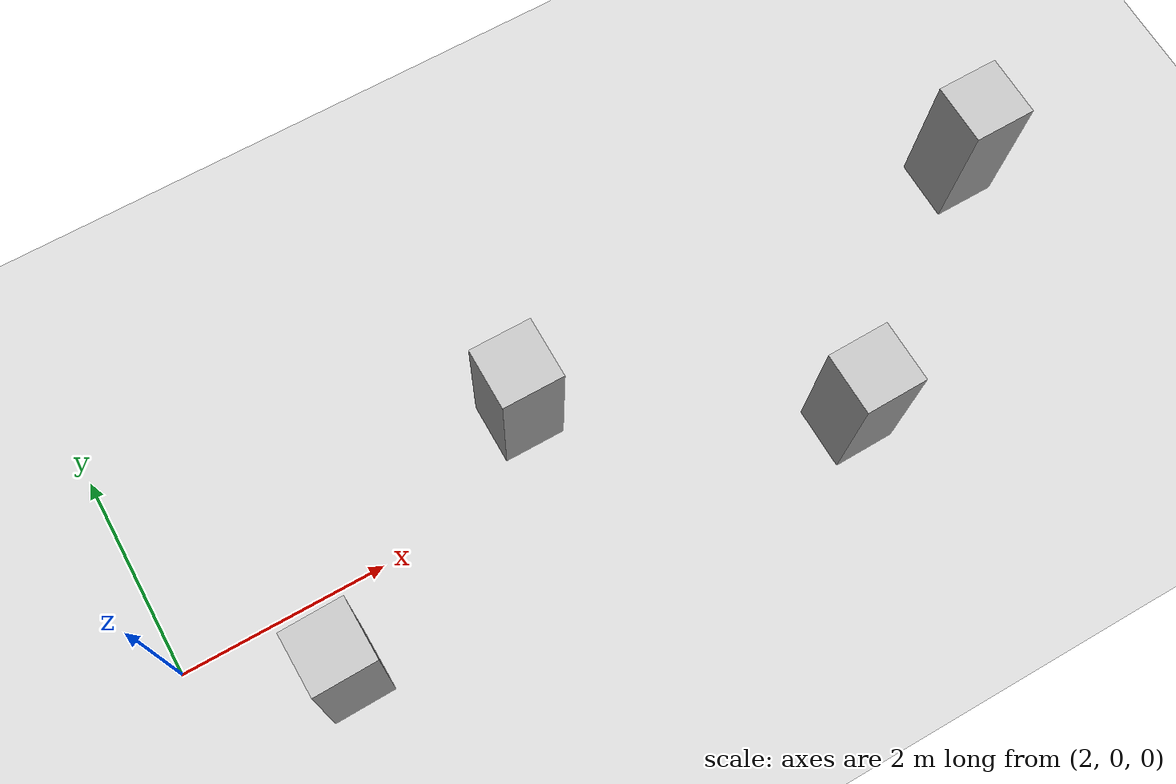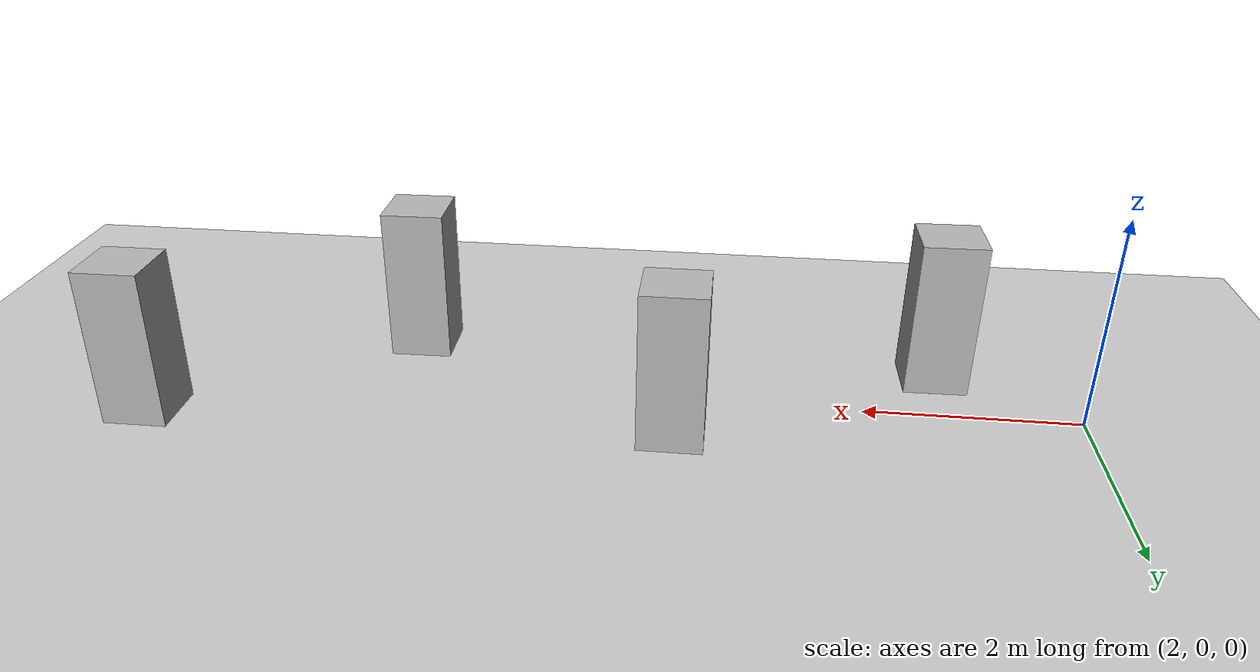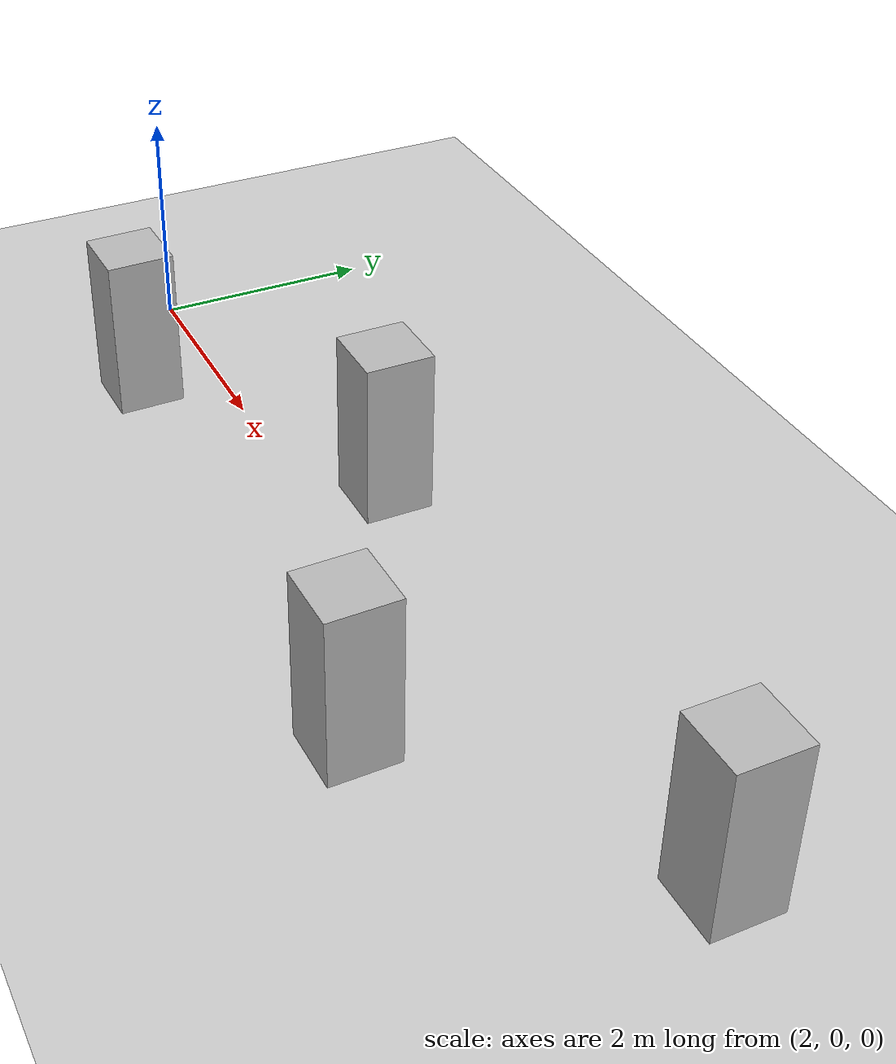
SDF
<?xml version="1.0"?>
<sdf version="1.6">
  <world name="v2-04g-r4-r1-static-s5099">
    <gravity>0 0 -9.81</gravity>
    <physics name="v2_deterministic" type="ode">
      <max_step_size>0.002</max_step_size>
      <real_time_update_rate>500</real_time_update_rate>
    </physics>
    <include>
      <uri>model://sun</uri>
    </include>
    <include>
      <uri>model://ground_plane</uri>
    </include>
    <model name="pillar-1">
      <static>true</static>
      <pose>3.281560625 -0.734541170 0.750000000 0 0 0.018590803</pose>
      <link name="link">
        <collision name="collision">
          <geometry>
            <box>
              <size>0.600000 0.600000 1.500000</size>
            </box>
          </geometry>
        </collision>
        <visual name="visual">
          <geometry>
            <box>
              <size>0.600000 0.600000 1.500000</size>
            </box>
          </geometry>
        </visual>
      </link>
    </model>
    <model name="pillar-2">
      <static>true</static>
      <pose>5.743208095 0.625344556 0.750000000 0 0 -0.000359925</pose>
      <link name="link">
        <collision name="collision">
          <geometry>
            <box>
              <size>0.600000 0.600000 1.500000</size>
            </box>
          </geometry>
        </collision>
        <visual name="visual">
          <geometry>
            <box>
              <size>0.600000 0.600000 1.500000</size>
            </box>
          </geometry>
        </visual>
      </link>
    </model>
    <model name="pillar-3">
      <static>true</static>
      <pose>8.376068855 -0.898770145 0.750000000 0 0 0.015965926</pose>
      <link name="link">
        <collision name="collision">
          <geometry>
            <box>
              <size>0.600000 0.600000 1.500000</size>
            </box>
          </geometry>
        </collision>
        <visual name="visual">
          <geometry>
            <box>
              <size>0.600000 0.600000 1.500000</size>
            </box>
          </geometry>
        </visual>
      </link>
    </model>
    <model name="pillar-4">
      <static>true</static>
      <pose>10.639838077 0.764063470 0.750000000 0 0 0.006974617</pose>
      <link name="link">
        <collision name="collision">
          <geometry>
            <box>
              <size>0.600000 0.600000 1.500000</size>
            </box>
          </geometry>
        </collision>
        <visual name="visual">
          <geometry>
            <box>
              <size>0.600000 0.600000 1.500000</size>
            </box>
          </geometry>
        </visual>
      </link>
    </model>
  </world>
</sdf>
